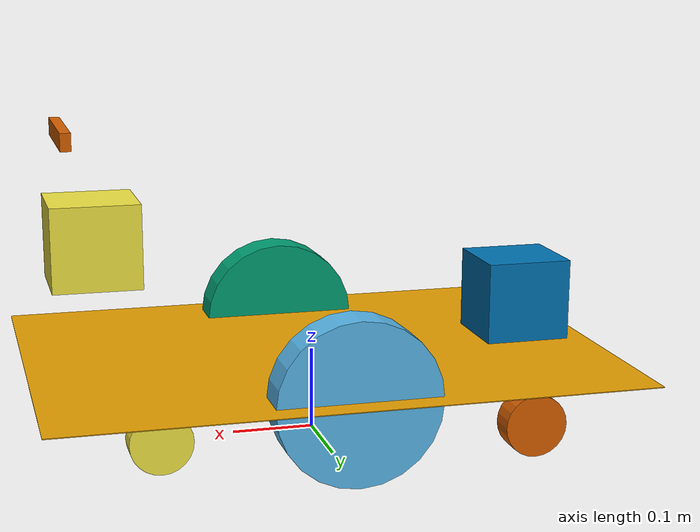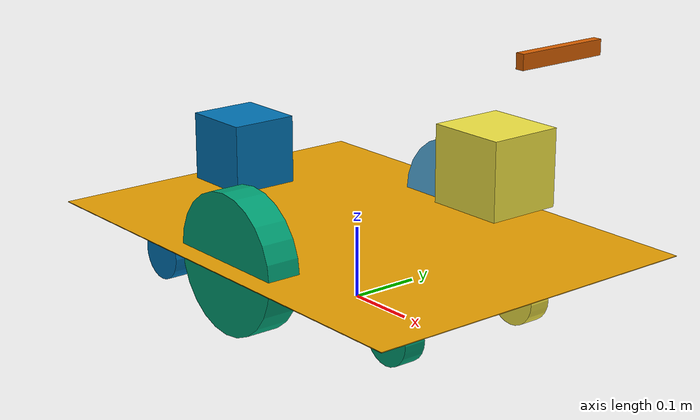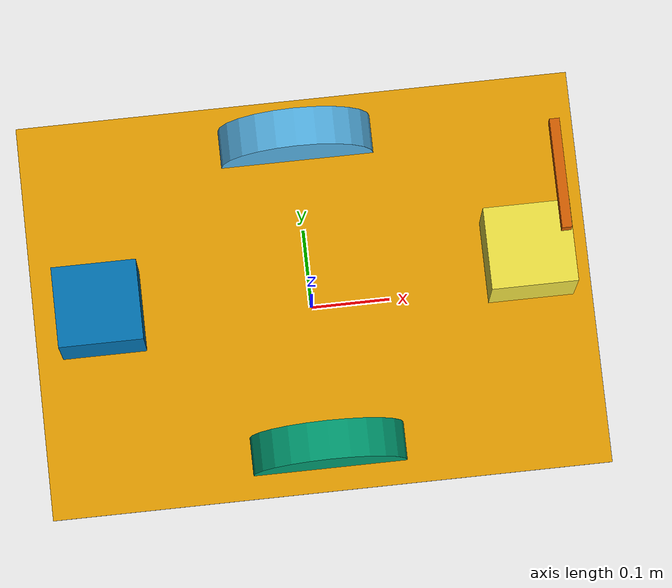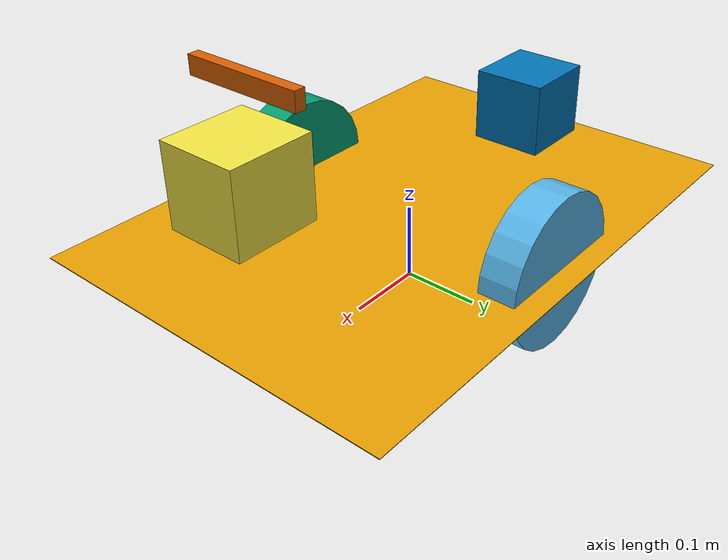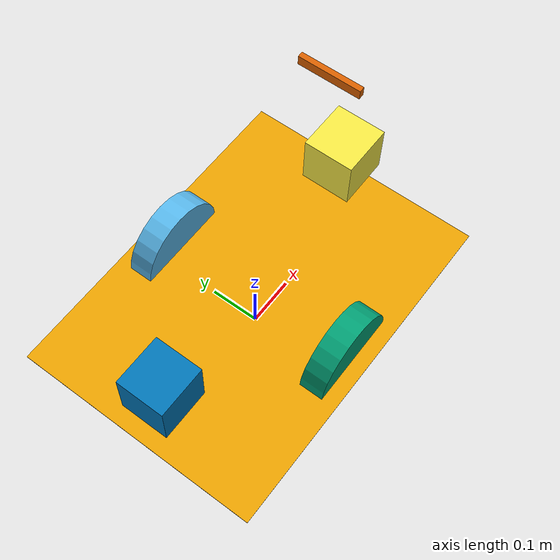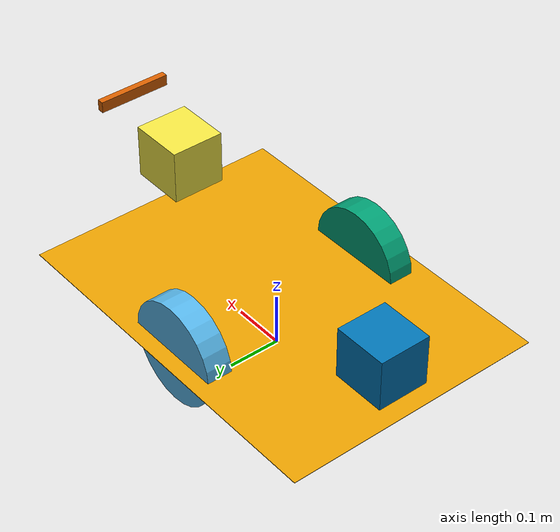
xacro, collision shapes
<?xml version="1.0"?>

<robot name="omronld" xmlns:xacro="http://ros.org/wiki/xacro">

  <!--general-->

  <xacro:arg name="robot_description" default="omronld_description" />
  <xacro:property name="M_PI" value="3.14159"/>

  <!--wheels-->

  <!-- Wheel Mounting Positions -->
  <xacro:property name="wheelbase" value="0" />
  <xacro:property name="track" value="0.3929777" />
  <xacro:property name="wheel_vertical_offset" value="${0.1936863/2}" />

  <!-- Wheel Properties -->
  <xacro:property name="wheel_length" value="0.048" />
  <xacro:property name="wheel_radius" value="${0.1936863/2}" />

  <!-- Include URDF/XACRO Files -->
  <xacro:include filename="$(find omronld_description)/urdf/omronld_wheel.urdf.xacro" />
  <xacro:include filename="$(find omronld_description)/urdf/omronld_caster.urdf.xacro" />

  <!-- LASER -->
  <xacro:include filename="$(find omronld_description)/urdf/laser/sick_lms1xx.urdf.xacro" />
  <xacro:include filename="$(find robots_ee_pkg)/urdf/camera/r200.urdf.xacro"/>

  <!-- base_link origin point is center of rotation, on the floor. -->

  <link name="base_link">

    <inertial>
      <mass value="63.5664" /> <!-- kg -->
      <inertia ixx="3.1802" ixy="0" ixz="0" iyy="2.9908" iyz="0" izz="2.2912" />
    </inertial>

    <visual>
      <geometry name="base_link_visual_geom">
        <mesh filename="package://omronld_description/meshes/omronld_visual.stl" scale="0.001 0.001 0.001" />
      </geometry>
      <origin xyz="-0.000880947 0 ${0.0375+0.0501498}" rpy="${M_PI/2} 0 ${M_PI/2}" />
    </visual>

    <collision name="base_link_collision">
      <geometry name="base_link_collision_geom">
        <box size="0.7 0.5 0.001" />
      </geometry>
      <origin xyz="0 0 0.1" rpy="0 0 0" />
    </collision>

  </link>

  <!-- omronld wheel macros -->

  <xacro:omronld_wheel wheel_prefix="left">
    <origin xyz="${wheelbase/2} ${track/2} ${wheel_vertical_offset}" rpy="0 0 0" />
  </xacro:omronld_wheel>

  <xacro:omronld_wheel wheel_prefix="right">
    <origin xyz="${wheelbase/2} ${-track/2} ${wheel_vertical_offset}" rpy="0 0 0" />
  </xacro:omronld_wheel>

  <!-- LASER -->

  <xacro:sick_lms1xx frame="base_laser" parent="base_link" topic="scanFront">
    <origin xyz="0.2652 0.0 0.201" rpy="${M_PI} 0.0 0.0"/>
  </xacro:sick_lms1xx>

  <xacro:sick_lms1xx frame="base_fake_laser" parent="base_link" topic="scanBack">
    <origin xyz="-0.2652 0.0 0.105" rpy="${M_PI} 0.0 ${M_PI}"/>
  </xacro:sick_lms1xx>

  <xacro:camera_r200 parent="base_link">
        <origin xyz="0.3 0 0.38" rpy="0 0 0" />
    </xacro:camera_r200>

  <!-- GAZEBO PLUGINS--> <!-- http://wiki.ros.org/urdf/Tutorials/Using%20a%20URDF%20in%20Gazebo-->

  <gazebo>
      <plugin name="differential_drive_controller" filename="libgazebo_ros_diff_drive.so">
        <rosDebugLevel>Debug</rosDebugLevel>
        <legacyMode>false</legacyMode>
        <publishWheelTF>false</publishWheelTF>
        <robotNamespace>/</robotNamespace>
        <publishTf>1</publishTf>
        <publishWheelJointState>true</publishWheelJointState>
        <alwaysOn>true</alwaysOn>
        <updateRate>100.0</updateRate>
        <leftJoint>left_wheel</leftJoint>
        <rightJoint>right_wheel</rightJoint>
        <wheelSeparation>${track}</wheelSeparation>
        <wheelDiameter>${wheel_radius*2}</wheelDiameter>
        <broadcastTF>1</broadcastTF>
        <wheelTorque>100</wheelTorque>
        <wheelAcceleration>1.8</wheelAcceleration>
        <commandTopic>cmd_vel</commandTopic>
        <odometryFrame>odom</odometryFrame>
        <odometryTopic>odom</odometryTopic>
        <robotBaseFrame>base_link</robotBaseFrame>
      </plugin>
    </gazebo>

<!-- four passive caster  -->

  <xacro:omronld_caster caster_prefix="r_f_caster">
    <origin xyz="0.2076340 ${-0.2159/2} 0.0375" rpy="0 0 0" />
  </xacro:omronld_caster>

  <xacro:omronld_caster caster_prefix="l_f_caster">
    <origin xyz="0.2076340 ${0.2159/2} 0.0375" rpy="0 0 0" />
  </xacro:omronld_caster>

  <xacro:omronld_caster caster_prefix="r_b_caster">
    <origin xyz="-0.2287113 ${-0.3132989/2} 0.0375" rpy="0 0 0" />
  </xacro:omronld_caster>

  <xacro:omronld_caster caster_prefix="l_b_caster">
    <origin xyz="-0.2287113 ${0.3132989/2} 0.0375" rpy="0 0 0" />
  </xacro:omronld_caster>

</robot>

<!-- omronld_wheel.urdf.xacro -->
<robot
  xmlns:sensor="http://playerstage.sourceforge.net/gazebo/xmlschema/#sensor"
  xmlns:controller="http://playerstage.sourceforge.net/gazebo/xmlschema/#controller"
  xmlns:interface="http://playerstage.sourceforge.net/gazebo/xmlschema/#interface"
  xmlns:xacro="http://ros.org/wiki/xacro"
  >

  <!-- Right/Left Wheel -->
  <xacro:macro name="omronld_wheel" params="wheel_prefix *joint_pose">

    	<link name="${wheel_prefix}_wheel_link">

    		<inertial>
      			<mass value="1.1"/>
      			<origin xyz="0 0 0"/>
      			<inertia ixx="0.02" ixy="0" ixz="0" iyy="0.02" iyz="0" izz="0.01" />
      		</inertial>

    		<collision>
			<origin xyz="0 0 0" rpy="${M_PI/2} 0 0" />
			<geometry>
				<cylinder length="${wheel_length}" radius="${wheel_radius}" />
			</geometry>
		</collision>

  </link>

	<gazebo reference="${wheel_prefix}_wheel_link">  <!--http://wiki.ros.org/urdf/Tutorials/Adding%20Physical%20and%20Collision%20Properties%20to%20a%20URDF%20Model-->

		<mu1 value="100.0"/>
		<mu2 value="100.0"/>
		<kp value="10000000.0" />
		<kd value="1.0" />
		<fdir1 value="1 0 0"/>

	</gazebo>

  	<joint name="${wheel_prefix}_wheel" type="continuous">
    		<parent link="base_link"/>
    		<child link="${wheel_prefix}_wheel_link"/>
		<xacro:insert_block name="joint_pose"/>
		<axis xyz="0 1 0" rpy="0 0 0" />

		<joint_properties damping="1.0" friction="10.0"/>

  	</joint>

	<transmission name="${wheel_prefix}_wheel_trans" type="SimpleTransmission">
		<type>transmission_interface/SimpleTransmission</type>
		<actuator name="${wheel_prefix}_wheel_motor">
			<mechanicalReduction>1</mechanicalReduction>
		</actuator>
		<joint name="${wheel_prefix}_wheel">
			<hardwareInterface>hardware_interface/VelocityJointInterface</hardwareInterface>
		</joint>
	</transmission>

   </xacro:macro>

</robot>

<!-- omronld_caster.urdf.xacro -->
<robot
  xmlns:sensor="http://playerstage.sourceforge.net/gazebo/xmlschema/#sensor"
  xmlns:controller="http://playerstage.sourceforge.net/gazebo/xmlschema/#controller"
  xmlns:interface="http://playerstage.sourceforge.net/gazebo/xmlschema/#interface"
  xmlns:xacro="http://ros.org/wiki/xacro"
  >

  <xacro:macro name="omronld_caster" params="caster_prefix *joint_pose">

        <link name="${caster_prefix}_caster_link">

    		<inertial>
      			<mass value="0.05"/>
      			<origin xyz="0 0 0" />
      			<inertia ixx="0.01" ixy="0" ixz="0" iyy="0.01" iyz="0" izz="0.01"/>
		</inertial>

    		<collision>
			<origin xyz="0 0 0" rpy="${M_PI/2} 0 0" />
			<geometry>
				<cylinder length="0.03175" radius="0.0375"/>
			</geometry>
		</collision>
		<visual>
      			<origin xyz="0 0 0" rpy="${M_PI/2} 0 0" />
      			<geometry>
				<cylinder length="0.03175" radius="0.0375"/>
      			</geometry>
		</visual>

        </link>

  	<joint name="${caster_prefix}_caster" type="fixed">
    		<parent link="base_link"/>
    		<child link="${caster_prefix}_caster_link"/>
		<axis xyz="0 0 1" rpy="0 0 0" />
		<xacro:insert_block name="joint_pose"/>

  	</joint>

   </xacro:macro>

</robot>

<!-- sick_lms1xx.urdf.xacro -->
<robot xmlns:xacro="http://ros.org/wiki/xacro">

  <xacro:macro name="sick_lms1xx" params="frame:=laser parent:=base_link topic:=scan sample_size:=720 update_rate:=50
               min_angle:=-2.0944 max_angle:=2.0944 min_range:=0.1 max_range:=15 robot_namespace:=/ *origin" >
    <link name="${frame}">
      <inertial>
        <mass value="1.1" />
        <origin xyz="0 0 0" />
        <inertia ixx="${0.0833333 * 1.1 * (0.102*0.102 + 0.152*0.152)}" ixy="0.0" ixz="0.0"
          iyy="${0.0833333 * 1.1 * (0.105*0.105 + 0.152*0.152)}" iyz="0.0"
          izz="${0.0833333 * 1.1 * (0.105*0.105 + 0.102*0.102)}" />
      </inertial>
      <visual>
        <origin xyz="0 0 0" rpy="0 0 0" />
        <geometry>
          <!-- Origin of this mesh is the focal point of the LIDAR. -->
          <mesh filename="package://omronld_description/meshes/laser/sick-lms1xx.dae" />
        </geometry>
      </visual>
      <collision>
        <origin xyz="0 0 -0.05" rpy="0 0 0" />
        <geometry>
          <box size="0.105 0.1 0.1" />
        </geometry>
      </collision>
    </link>

    <joint name="${frame}_joint" type="fixed">
      <xacro:insert_block name="origin"/>
      <parent link="${parent}" />
      <child link="${frame}" />
    </joint>

    <gazebo reference="${frame}">
      <turnGravityOff>false</turnGravityOff>
      <sensor type="ray" name="${frame}">
        <pose>0 0 0 0 0 0</pose>
        <visualize>false</visualize>
        <update_rate>${update_rate}</update_rate>
        <ray>
          <scan>
            <horizontal>
              <samples>${sample_size}</samples>
              <resolution>1</resolution>
              <min_angle>${min_angle}</min_angle>
              <max_angle>${max_angle}</max_angle>
            </horizontal>
          </scan>
          <range>
            <min>${min_range}</min>
            <max>${max_range}</max>
            <resolution>0.01</resolution>
          </range>
          <noise>
            <type>gaussian</type>
            <mean>0.0</mean>
            <stddev>0.001</stddev>
          </noise>
        </ray>
        <plugin name="gazebo_ros_laser" filename="libgazebo_ros_laser.so">
          <topicName>${topic}</topicName>
          <frameName>${frame}</frameName>
          <robotNamespace>/</robotNamespace>
        </plugin>
      </sensor>
    </gazebo>
  </xacro:macro>
</robot>

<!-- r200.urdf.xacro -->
<robot xmlns:xacro="http://www.ros.org/wiki/xacro" name="camera_r200">
    <xacro:property name="r200_cam_rgb_px" value="0.005"/>
    <xacro:property name="r200_cam_rgb_py" value="0.018"/>
    <xacro:property name="r200_cam_rgb_pz" value="0.013"/>
    <xacro:property name="r200_cam_depth_offset" value="0.01"/>
    <xacro:arg name="camera_visual" default="true"/>

    <xacro:macro name="camera_r200" params="parent *origin">

        <joint name="camera_joint" type="fixed">
            <xacro:insert_block name="origin"/>
            <parent link="${parent}"/>
            <child link="camera_link"/>
        </joint>

        <link name="camera_link">
            <visual>
                <origin xyz="0 0 0" rpy="1.57 0 1.57"/>
                <geometry>
                    <mesh filename="package://turtlebot3_description/meshes/sensors/r200.dae" />
                </geometry>
            </visual>
            <collision>
                <origin xyz="0.003 0.065 0.007" rpy="0 0 0"/>
                <geometry>
                    <box size="0.012 0.132 0.020"/>
                </geometry>
            </collision>

            <!-- This inertial field needs doesn't contain reliable data!! -->
            <inertial>
                <mass value="0.564" />
                <origin xyz="0 0 0" />
                    <inertia ixx="0.003881243" ixy="0.0" ixz="0.0"
                            iyy="0.000498940" iyz="0.0"
                            izz="0.003879257" />
            </inertial>
        </link>

        <joint name="camera_rgb_joint" type="fixed">
            <origin xyz="${r200_cam_rgb_px} ${r200_cam_rgb_py} ${r200_cam_rgb_pz}" rpy="0 0 0"/>
            <parent link="camera_link"/>
            <child link="camera_rgb_frame"/>
        </joint>
        <link name="camera_rgb_frame"/>

        <joint name="camera_rgb_optical_joint" type="fixed">
            <origin xyz="0 0 0" rpy="-1.57 0 -1.57"/>
            <parent link="camera_rgb_frame"/>
            <child link="camera_rgb_optical_frame"/>
        </joint>
        <link name="camera_rgb_optical_frame"/>

        <joint name="camera_depth_joint" type="fixed">
            <origin xyz="${r200_cam_rgb_px} ${r200_cam_rgb_py + r200_cam_depth_offset} ${r200_cam_rgb_pz}" rpy="0 0 0"/>
            <parent link="camera_link"/>
            <child link="camera_depth_frame"/>
        </joint>
        <link name="camera_depth_frame"/>

        <joint name="camera_depth_optical_joint" type="fixed">
            <origin xyz="0 0 0" rpy="-1.57 0 -1.57"/>
            <parent link="camera_depth_frame"/>
            <child link="camera_depth_optical_frame"/>
        </joint>
        <link name="camera_depth_optical_frame"/>

        <gazebo reference="camera_rgb_frame">
            <sensor type="depth" name="realsense_R200">
                <always_on>true</always_on>
                <visualize>$(arg camera_visual)</visualize>
                <camera>
                    <horizontal_fov>1.3439</horizontal_fov>
                    <image>
                        <width>1920</width>
                        <height>1080</height>
                        <format>R8G8B8</format>
                    </image>
                    <depth_camera></depth_camera>
                    <clip>
                        <near>0.03</near>
                        <far>100</far>
                    </clip>
                </camera>
                <plugin name="camera_controller" filename="libgazebo_ros_openni_kinect.so">
                    <baseline>0.2</baseline>
                    <alwaysOn>true</alwaysOn>
                    <updateRate>30.0</updateRate>
                    <cameraName>camera</cameraName>
                    <frameName>camera_rgb_optical_frame</frameName>
                    <imageTopicName>rgb/image_raw</imageTopicName>
                    <depthImageTopicName>depth/image_raw</depthImageTopicName>
                    <pointCloudTopicName>depth/points</pointCloudTopicName>
                    <cameraInfoTopicName>rgb/camera_info</cameraInfoTopicName>
                    <depthImageCameraInfoTopicName>depth/camera_info</depthImageCameraInfoTopicName>
                    <pointCloudCutoff>0.4</pointCloudCutoff>
                        <hackBaseline>0.07</hackBaseline>
                        <distortionK1>0.0</distortionK1>
                        <distortionK2>0.0</distortionK2>
                        <distortionK3>0.0</distortionK3>
                        <distortionT1>0.0</distortionT1>
                        <distortionT2>0.0</distortionT2>
                    <CxPrime>0.0</CxPrime>
                    <Cx>0.0</Cx>
                    <Cy>0.0</Cy>
                    <focalLength>0</focalLength>
                    <hackBaseline>0</hackBaseline>
                </plugin>
            </sensor>
        </gazebo>

    </xacro:macro>
</robot>
